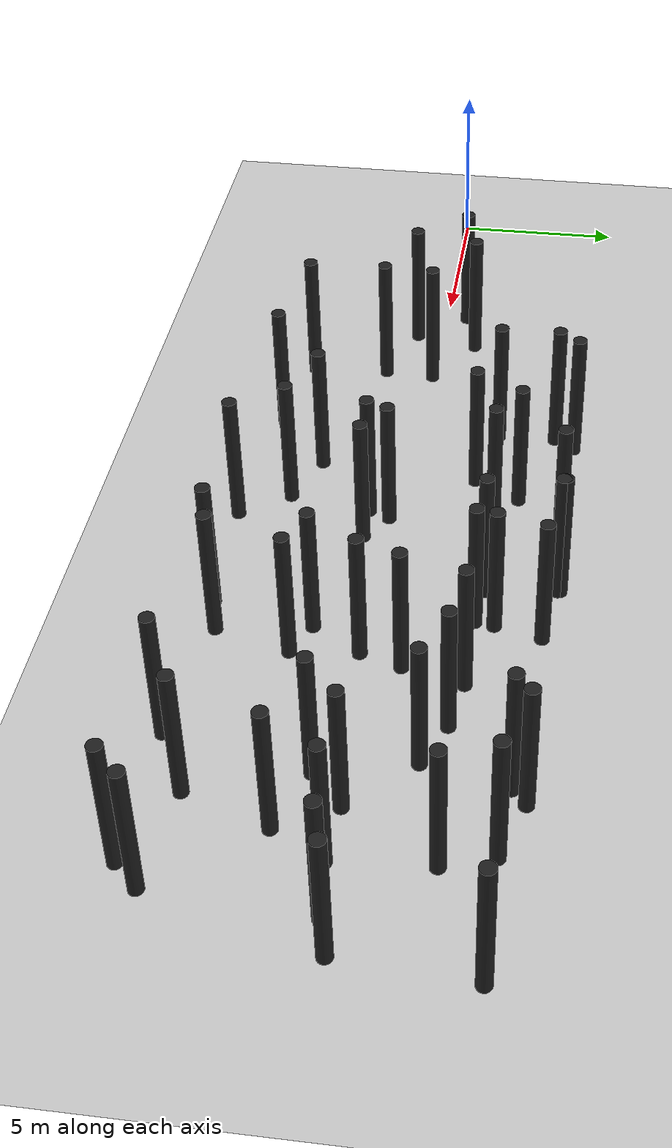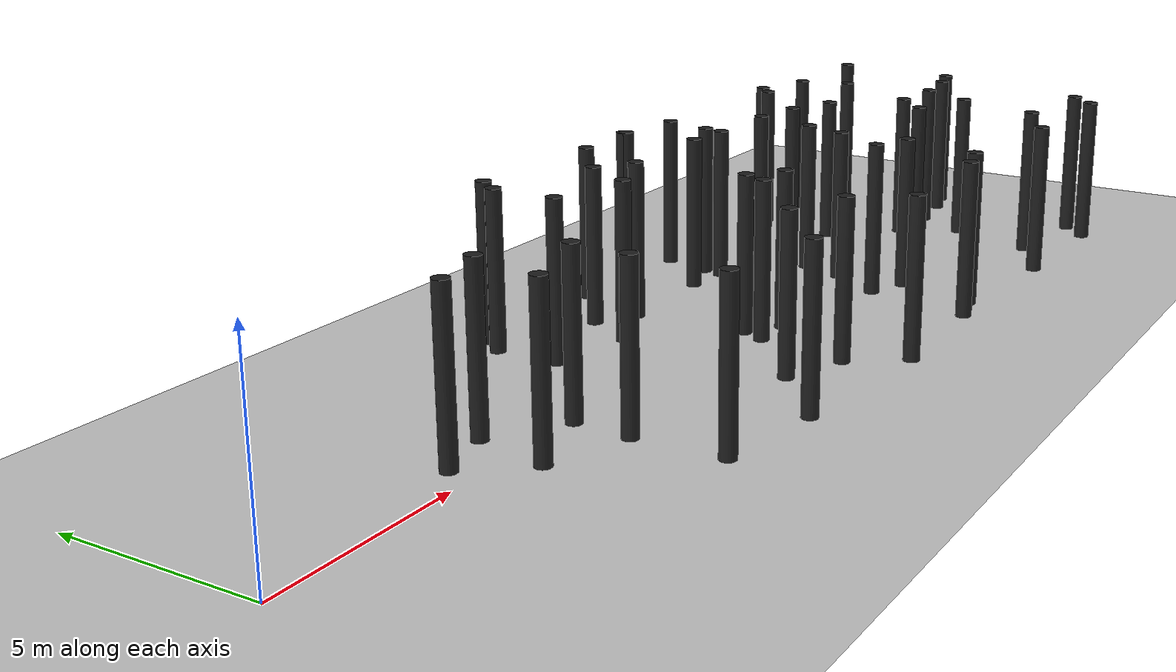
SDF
<sdf version="1.5">
 <world name="default">
  <model name="ground_plane">
   <static>1</static>
   <link name="link">
    <collision name="collision">
     <geometry><plane><normal>0 0 1</normal><size>200 200</size></plane></geometry>
     <surface><friction><ode><mu>100</mu><mu2>50</mu2></ode></friction></surface>
    </collision>
    <visual name="visual">
     <cast_shadows>0</cast_shadows>
     <geometry><plane><normal>0 0 1</normal><size>200 200</size></plane></geometry>
     <material>
      <script><uri>file://media/materials/scripts/gazebo.material</uri><name>Gazebo/Grey</name></script>
     </material>
    </visual>
   </link>
  </model>
  <model name="forest_clone_2">
   <pose>19.735 -4.62989 0.00488 0 -0 0</pose>
   <static>1</static>
   <link name="cylinder::link">
    <inertial>
     <mass>1</mass>
     <inertia><ixx>0.083</ixx><ixy>0</ixy><ixz>0</ixz><iyy>0.083</iyy><iyz>0</iyz><izz>0.083</izz></inertia>
    </inertial>
    <collision name="collision">
     <geometry><cylinder><radius>0.2</radius><length>4</length></cylinder></geometry>
    </collision>
    <visual name="visual">
     <geometry><cylinder><radius>0.2</radius><length>4</length></cylinder></geometry>
     <material>
      <script><uri>file://media/materials/scripts/gazebo.material</uri><name>Gazebo/Black</name></script>
     </material>
    </visual>
    <pose>0 0 2 0 -0 0</pose>
   </link>
  </model>
  <model name="forest_clone_3">
   <pose>23.3371 2.08051 -0.002989 0 -0 0</pose>
   <static>1</static>
   <link name="cylinder::link">
    <inertial>
     <mass>1</mass>
     <inertia><ixx>0.083</ixx><ixy>0</ixy><ixz>0</ixz><iyy>0.083</iyy><iyz>0</iyz><izz>0.083</izz></inertia>
    </inertial>
    <collision name="collision">
     <geometry><cylinder><radius>0.2</radius><length>4</length></cylinder></geometry>
    </collision>
    <visual name="visual">
     <geometry><cylinder><radius>0.2</radius><length>4</length></cylinder></geometry>
     <material>
      <script><uri>file://media/materials/scripts/gazebo.material</uri><name>Gazebo/Black</name></script>
     </material>
    </visual>
    <pose>0 0 2 0 -0 0</pose>
   </link>
  </model>
  <model name="forest_clone_5">
   <pose>16.1395 -4.73642 -0.000165 0 -0 0</pose>
   <static>1</static>
   <link name="cylinder::link">
    <inertial>
     <mass>1</mass>
     <inertia><ixx>0.083</ixx><ixy>0</ixy><ixz>0</ixz><iyy>0.083</iyy><iyz>0</iyz><izz>0.083</izz></inertia>
    </inertial>
    <collision name="collision">
     <geometry><cylinder><radius>0.2</radius><length>4</length></cylinder></geometry>
    </collision>
    <visual name="visual">
     <geometry><cylinder><radius>0.2</radius><length>4</length></cylinder></geometry>
     <material>
      <script><uri>file://media/materials/scripts/gazebo.material</uri><name>Gazebo/Black</name></script>
     </material>
    </visual>
    <pose>0 0 2 0 -0 0</pose>
   </link>
  </model>
  <model name="forest_clone_6">
   <pose>27.5638 2.34565 -0.001375 0 -0 0</pose>
   <static>1</static>
   <link name="cylinder::link">
    <inertial>
     <mass>1</mass>
     <inertia><ixx>0.083</ixx><ixy>0</ixy><ixz>0</ixz><iyy>0.083</iyy><iyz>0</iyz><izz>0.083</izz></inertia>
    </inertial>
    <collision name="collision">
     <geometry><cylinder><radius>0.2</radius><length>4</length></cylinder></geometry>
    </collision>
    <visual name="visual">
     <geometry><cylinder><radius>0.2</radius><length>4</length></cylinder></geometry>
     <material>
      <script><uri>file://media/materials/scripts/gazebo.material</uri><name>Gazebo/Black</name></script>
     </material>
    </visual>
    <pose>0 0 2 0 -0 0</pose>
   </link>
  </model>
  <model name="forest_clone_7">
   <pose>6.86446 -0.829664 0.002199 0 -0 0</pose>
   <static>1</static>
   <link name="cylinder::link">
    <inertial>
     <mass>1</mass>
     <inertia><ixx>0.083</ixx><ixy>0</ixy><ixz>0</ixz><iyy>0.083</iyy><iyz>0</iyz><izz>0.083</izz></inertia>
    </inertial>
    <collision name="collision">
     <geometry><cylinder><radius>0.2</radius><length>4</length></cylinder></geometry>
    </collision>
    <visual name="visual">
     <geometry><cylinder><radius>0.2</radius><length>4</length></cylinder></geometry>
     <material>
      <script><uri>file://media/materials/scripts/gazebo.material</uri><name>Gazebo/Black</name></script>
     </material>
    </visual>
    <pose>0 0 2 0 -0 0</pose>
   </link>
  </model>
  <model name="forest_clone_9">
   <pose>11.6936 3.89703 -4e-05 0 -0 0</pose>
   <static>1</static>
   <link name="cylinder::link">
    <inertial>
     <mass>1</mass>
     <inertia><ixx>0.083</ixx><ixy>0</ixy><ixz>0</ixz><iyy>0.083</iyy><iyz>0</iyz><izz>0.083</izz></inertia>
    </inertial>
    <collision name="collision">
     <geometry><cylinder><radius>0.2</radius><length>4</length></cylinder></geometry>
    </collision>
    <visual name="visual">
     <geometry><cylinder><radius>0.2</radius><length>4</length></cylinder></geometry>
     <material>
      <script><uri>file://media/materials/scripts/gazebo.material</uri><name>Gazebo/Black</name></script>
     </material>
    </visual>
    <pose>0 0 2 0 -0 0</pose>
   </link>
  </model>
  <model name="forest_clone_10">
   <pose>26.1507 -0.118058 -0.000189 0 -0 0</pose>
   <static>1</static>
   <link name="cylinder::link">
    <inertial>
     <mass>1</mass>
     <inertia><ixx>0.083</ixx><ixy>0</ixy><ixz>0</ixz><iyy>0.083</iyy><iyz>0</iyz><izz>0.083</izz></inertia>
    </inertial>
    <collision name="collision">
     <geometry><cylinder><radius>0.2</radius><length>4</length></cylinder></geometry>
    </collision>
    <visual name="visual">
     <geometry><cylinder><radius>0.2</radius><length>4</length></cylinder></geometry>
     <material>
      <script><uri>file://media/materials/scripts/gazebo.material</uri><name>Gazebo/Black</name></script>
     </material>
    </visual>
    <pose>0 0 2 0 -0 0</pose>
   </link>
  </model>
  <model name="forest_clone_11">
   <pose>14.5857 3.06083 -0.000358 0 -0 0</pose>
   <static>1</static>
   <link name="cylinder::link">
    <inertial>
     <mass>1</mass>
     <inertia><ixx>0.083</ixx><ixy>0</ixy><ixz>0</ixz><iyy>0.083</iyy><iyz>0</iyz><izz>0.083</izz></inertia>
    </inertial>
    <collision name="collision">
     <geometry><cylinder><radius>0.2</radius><length>4</length></cylinder></geometry>
    </collision>
    <visual name="visual">
     <geometry><cylinder><radius>0.2</radius><length>4</length></cylinder></geometry>
     <material>
      <script><uri>file://media/materials/scripts/gazebo.material</uri><name>Gazebo/Black</name></script>
     </material>
    </visual>
    <pose>0 0 2 0 -0 0</pose>
   </link>
  </model>
  <model name="forest_clone_12">
   <pose>30.221 0.206009 -0.002528 0 -0 0</pose>
   <static>1</static>
   <link name="cylinder::link">
    <inertial>
     <mass>1</mass>
     <inertia><ixx>0.083</ixx><ixy>0</ixy><ixz>0</ixz><iyy>0.083</iyy><iyz>0</iyz><izz>0.083</izz></inertia>
    </inertial>
    <collision name="collision">
     <geometry><cylinder><radius>0.2</radius><length>4</length></cylinder></geometry>
    </collision>
    <visual name="visual">
     <geometry><cylinder><radius>0.2</radius><length>4</length></cylinder></geometry>
     <material>
      <script><uri>file://media/materials/scripts/gazebo.material</uri><name>Gazebo/Black</name></script>
     </material>
    </visual>
    <pose>0 0 2 0 -0 0</pose>
   </link>
  </model>
  <model name="forest_clone_13">
   <pose>27.7577 -0.246484 0.004658 0 -0 0</pose>
   <static>1</static>
   <link name="cylinder::link">
    <inertial>
     <mass>1</mass>
     <inertia><ixx>0.083</ixx><ixy>0</ixy><ixz>0</ixz><iyy>0.083</iyy><iyz>0</iyz><izz>0.083</izz></inertia>
    </inertial>
    <collision name="collision">
     <geometry><cylinder><radius>0.2</radius><length>4</length></cylinder></geometry>
    </collision>
    <visual name="visual">
     <geometry><cylinder><radius>0.2</radius><length>4</length></cylinder></geometry>
     <material>
      <script><uri>file://media/materials/scripts/gazebo.material</uri><name>Gazebo/Black</name></script>
     </material>
    </visual>
    <pose>0 0 2 0 -0 0</pose>
   </link>
  </model>
  <model name="forest_clone_14">
   <pose>12.0933 4.47642 0.003314 0 -0 0</pose>
   <static>1</static>
   <link name="cylinder::link">
    <inertial>
     <mass>1</mass>
     <inertia><ixx>0.083</ixx><ixy>0</ixy><ixz>0</ixz><iyy>0.083</iyy><iyz>0</iyz><izz>0.083</izz></inertia>
    </inertial>
    <collision name="collision">
     <geometry><cylinder><radius>0.2</radius><length>4</length></cylinder></geometry>
    </collision>
    <visual name="visual">
     <geometry><cylinder><radius>0.2</radius><length>4</length></cylinder></geometry>
     <material>
      <script><uri>file://media/materials/scripts/gazebo.material</uri><name>Gazebo/Black</name></script>
     </material>
    </visual>
    <pose>0 0 2 0 -0 0</pose>
   </link>
  </model>
  <model name="forest_clone_15">
   <pose>16.1999 4.34021 0.004076 0 -0 0</pose>
   <static>1</static>
   <link name="cylinder::link">
    <inertial>
     <mass>1</mass>
     <inertia><ixx>0.083</ixx><ixy>0</ixy><ixz>0</ixz><iyy>0.083</iyy><iyz>0</iyz><izz>0.083</izz></inertia>
    </inertial>
    <collision name="collision">
     <geometry><cylinder><radius>0.2</radius><length>4</length></cylinder></geometry>
    </collision>
    <visual name="visual">
     <geometry><cylinder><radius>0.2</radius><length>4</length></cylinder></geometry>
     <material>
      <script><uri>file://media/materials/scripts/gazebo.material</uri><name>Gazebo/Black</name></script>
     </material>
    </visual>
    <pose>0 0 2 0 -0 0</pose>
   </link>
  </model>
  <model name="forest_clone_18">
   <pose>21.1371 -0.47592 -0.00285 0 -0 0</pose>
   <static>1</static>
   <link name="cylinder::link">
    <inertial>
     <mass>1</mass>
     <inertia><ixx>0.083</ixx><ixy>0</ixy><ixz>0</ixz><iyy>0.083</iyy><iyz>0</iyz><izz>0.083</izz></inertia>
    </inertial>
    <collision name="collision">
     <geometry><cylinder><radius>0.2</radius><length>4</length></cylinder></geometry>
    </collision>
    <visual name="visual">
     <geometry><cylinder><radius>0.2</radius><length>4</length></cylinder></geometry>
     <material>
      <script><uri>file://media/materials/scripts/gazebo.material</uri><name>Gazebo/Black</name></script>
     </material>
    </visual>
    <pose>0 0 2 0 -0 0</pose>
   </link>
  </model>
  <model name="forest_clone_20">
   <pose>26.1761 -3.96041 0.004466 0 -0 0</pose>
   <static>1</static>
   <link name="cylinder::link">
    <inertial>
     <mass>1</mass>
     <inertia><ixx>0.083</ixx><ixy>0</ixy><ixz>0</ixz><iyy>0.083</iyy><iyz>0</iyz><izz>0.083</izz></inertia>
    </inertial>
    <collision name="collision">
     <geometry><cylinder><radius>0.2</radius><length>4</length></cylinder></geometry>
    </collision>
    <visual name="visual">
     <geometry><cylinder><radius>0.2</radius><length>4</length></cylinder></geometry>
     <material>
      <script><uri>file://media/materials/scripts/gazebo.material</uri><name>Gazebo/Black</name></script>
     </material>
    </visual>
    <pose>0 0 2 0 -0 0</pose>
   </link>
  </model>
  <model name="forest_clone_23">
   <pose>21.4987 0.655511 0.000589 0 -0 0</pose>
   <static>1</static>
   <link name="cylinder::link">
    <inertial>
     <mass>1</mass>
     <inertia><ixx>0.083</ixx><ixy>0</ixy><ixz>0</ixz><iyy>0.083</iyy><iyz>0</iyz><izz>0.083</izz></inertia>
    </inertial>
    <collision name="collision">
     <geometry><cylinder><radius>0.2</radius><length>4</length></cylinder></geometry>
    </collision>
    <visual name="visual">
     <geometry><cylinder><radius>0.2</radius><length>4</length></cylinder></geometry>
     <material>
      <script><uri>file://media/materials/scripts/gazebo.material</uri><name>Gazebo/Black</name></script>
     </material>
    </visual>
    <pose>0 0 2 0 -0 0</pose>
   </link>
  </model>
  <model name="forest_clone_25">
   <pose>19.6484 2.34191 0.000782 0 -0 0</pose>
   <static>1</static>
   <link name="cylinder::link">
    <inertial>
     <mass>1</mass>
     <inertia><ixx>0.083</ixx><ixy>0</ixy><ixz>0</ixz><iyy>0.083</iyy><iyz>0</iyz><izz>0.083</izz></inertia>
    </inertial>
    <collision name="collision">
     <geometry><cylinder><radius>0.2</radius><length>4</length></cylinder></geometry>
    </collision>
    <visual name="visual">
     <geometry><cylinder><radius>0.2</radius><length>4</length></cylinder></geometry>
     <material>
      <script><uri>file://media/materials/scripts/gazebo.material</uri><name>Gazebo/Black</name></script>
     </material>
    </visual>
    <pose>0 0 2 0 -0 0</pose>
   </link>
  </model>
  <model name="forest_clone_28">
   <pose>9.03167 -3.80021 -0.00308 0 -0 0</pose>
   <static>1</static>
   <link name="cylinder::link">
    <inertial>
     <mass>1</mass>
     <inertia><ixx>0.083</ixx><ixy>0</ixy><ixz>0</ixz><iyy>0.083</iyy><iyz>0</iyz><izz>0.083</izz></inertia>
    </inertial>
    <collision name="collision">
     <geometry><cylinder><radius>0.2</radius><length>4</length></cylinder></geometry>
    </collision>
    <visual name="visual">
     <geometry><cylinder><radius>0.2</radius><length>4</length></cylinder></geometry>
     <material>
      <script><uri>file://media/materials/scripts/gazebo.material</uri><name>Gazebo/Black</name></script>
     </material>
    </visual>
    <pose>0 0 2 0 -0 0</pose>
   </link>
  </model>
  <model name="forest_clone_29">
   <pose>24.4455 -4.84335 0.004124 0 -0 0</pose>
   <static>1</static>
   <link name="cylinder::link">
    <inertial>
     <mass>1</mass>
     <inertia><ixx>0.083</ixx><ixy>0</ixy><ixz>0</ixz><iyy>0.083</iyy><iyz>0</iyz><izz>0.083</izz></inertia>
    </inertial>
    <collision name="collision">
     <geometry><cylinder><radius>0.2</radius><length>4</length></cylinder></geometry>
    </collision>
    <visual name="visual">
     <geometry><cylinder><radius>0.2</radius><length>4</length></cylinder></geometry>
     <material>
      <script><uri>file://media/materials/scripts/gazebo.material</uri><name>Gazebo/Black</name></script>
     </material>
    </visual>
    <pose>0 0 2 0 -0 0</pose>
   </link>
  </model>
  <model name="forest_clone_32">
   <pose>5.70693 0.6143 0.001264 0 -0 0</pose>
   <static>1</static>
   <link name="cylinder::link">
    <inertial>
     <mass>1</mass>
     <inertia><ixx>0.083</ixx><ixy>0</ixy><ixz>0</ixz><iyy>0.083</iyy><iyz>0</iyz><izz>0.083</izz></inertia>
    </inertial>
    <collision name="collision">
     <geometry><cylinder><radius>0.2</radius><length>4</length></cylinder></geometry>
    </collision>
    <visual name="visual">
     <geometry><cylinder><radius>0.2</radius><length>4</length></cylinder></geometry>
     <material>
      <script><uri>file://media/materials/scripts/gazebo.material</uri><name>Gazebo/Black</name></script>
     </material>
    </visual>
    <pose>0 0 2 0 -0 0</pose>
   </link>
  </model>
  <model name="forest_clone_34">
   <pose>28.3636 -4.96296 -0.001198 0 -0 0</pose>
   <static>1</static>
   <link name="cylinder::link">
    <inertial>
     <mass>1</mass>
     <inertia><ixx>0.083</ixx><ixy>0</ixy><ixz>0</ixz><iyy>0.083</iyy><iyz>0</iyz><izz>0.083</izz></inertia>
    </inertial>
    <collision name="collision">
     <geometry><cylinder><radius>0.2</radius><length>4</length></cylinder></geometry>
    </collision>
    <visual name="visual">
     <geometry><cylinder><radius>0.2</radius><length>4</length></cylinder></geometry>
     <material>
      <script><uri>file://media/materials/scripts/gazebo.material</uri><name>Gazebo/Black</name></script>
     </material>
    </visual>
    <pose>0 0 2 0 -0 0</pose>
   </link>
  </model>
  <model name="forest_clone_35">
   <pose>18.1963 4.48754 -0.000638 0 -0 0</pose>
   <static>1</static>
   <link name="cylinder::link">
    <inertial>
     <mass>1</mass>
     <inertia><ixx>0.083</ixx><ixy>0</ixy><ixz>0</ixz><iyy>0.083</iyy><iyz>0</iyz><izz>0.083</izz></inertia>
    </inertial>
    <collision name="collision">
     <geometry><cylinder><radius>0.2</radius><length>4</length></cylinder></geometry>
    </collision>
    <visual name="visual">
     <geometry><cylinder><radius>0.2</radius><length>4</length></cylinder></geometry>
     <material>
      <script><uri>file://media/materials/scripts/gazebo.material</uri><name>Gazebo/Black</name></script>
     </material>
    </visual>
    <pose>0 0 2 0 -0 0</pose>
   </link>
  </model>
  <model name="forest_clone_36">
   <pose>20.7416 -4.36568 0.001531 0 -0 0</pose>
   <static>1</static>
   <link name="cylinder::link">
    <inertial>
     <mass>1</mass>
     <inertia><ixx>0.083</ixx><ixy>0</ixy><ixz>0</ixz><iyy>0.083</iyy><iyz>0</iyz><izz>0.083</izz></inertia>
    </inertial>
    <collision name="collision">
     <geometry><cylinder><radius>0.2</radius><length>4</length></cylinder></geometry>
    </collision>
    <visual name="visual">
     <geometry><cylinder><radius>0.2</radius><length>4</length></cylinder></geometry>
     <material>
      <script><uri>file://media/materials/scripts/gazebo.material</uri><name>Gazebo/Black</name></script>
     </material>
    </visual>
    <pose>0 0 2 0 -0 0</pose>
   </link>
  </model>
  <model name="forest_clone_38">
   <pose>15.5802 -1.07966 0.000842 0 -0 0</pose>
   <static>1</static>
   <link name="cylinder::link">
    <inertial>
     <mass>1</mass>
     <inertia><ixx>0.083</ixx><ixy>0</ixy><ixz>0</ixz><iyy>0.083</iyy><iyz>0</iyz><izz>0.083</izz></inertia>
    </inertial>
    <collision name="collision">
     <geometry><cylinder><radius>0.2</radius><length>4</length></cylinder></geometry>
    </collision>
    <visual name="visual">
     <geometry><cylinder><radius>0.2</radius><length>4</length></cylinder></geometry>
     <material>
      <script><uri>file://media/materials/scripts/gazebo.material</uri><name>Gazebo/Black</name></script>
     </material>
    </visual>
    <pose>0 0 2 0 -0 0</pose>
   </link>
  </model>
  <model name="forest_clone_39">
   <pose>13.8792 1.75486 -0.003355 0 -0 0</pose>
   <static>1</static>
   <link name="cylinder::link">
    <inertial>
     <mass>1</mass>
     <inertia><ixx>0.083</ixx><ixy>0</ixy><ixz>0</ixz><iyy>0.083</iyy><iyz>0</iyz><izz>0.083</izz></inertia>
    </inertial>
    <collision name="collision">
     <geometry><cylinder><radius>0.2</radius><length>4</length></cylinder></geometry>
    </collision>
    <visual name="visual">
     <geometry><cylinder><radius>0.2</radius><length>4</length></cylinder></geometry>
     <material>
      <script><uri>file://media/materials/scripts/gazebo.material</uri><name>Gazebo/Black</name></script>
     </material>
    </visual>
    <pose>0 0 2 0 -0 0</pose>
   </link>
  </model>
  <model name="forest_clone_43">
   <pose>26.9808 -1.64941 0.001403 0 -0 0</pose>
   <static>1</static>
   <link name="cylinder::link">
    <inertial>
     <mass>1</mass>
     <inertia><ixx>0.083</ixx><ixy>0</ixy><ixz>0</ixz><iyy>0.083</iyy><iyz>0</iyz><izz>0.083</izz></inertia>
    </inertial>
    <collision name="collision">
     <geometry><cylinder><radius>0.2</radius><length>4</length></cylinder></geometry>
    </collision>
    <visual name="visual">
     <geometry><cylinder><radius>0.2</radius><length>4</length></cylinder></geometry>
     <material>
      <script><uri>file://media/materials/scripts/gazebo.material</uri><name>Gazebo/Black</name></script>
     </material>
    </visual>
    <pose>0 0 2 0 -0 0</pose>
   </link>
  </model>
  <model name="forest_clone_44">
   <pose>8.92348 -1.56119 -0.003668 0 -0 0</pose>
   <static>1</static>
   <link name="cylinder::link">
    <inertial>
     <mass>1</mass>
     <inertia><ixx>0.083</ixx><ixy>0</ixy><ixz>0</ixz><iyy>0.083</iyy><iyz>0</iyz><izz>0.083</izz></inertia>
    </inertial>
    <collision name="collision">
     <geometry><cylinder><radius>0.2</radius><length>4</length></cylinder></geometry>
    </collision>
    <visual name="visual">
     <geometry><cylinder><radius>0.2</radius><length>4</length></cylinder></geometry>
     <material>
      <script><uri>file://media/materials/scripts/gazebo.material</uri><name>Gazebo/Black</name></script>
     </material>
    </visual>
    <pose>0 0 2 0 -0 0</pose>
   </link>
  </model>
  <model name="forest_clone_46">
   <pose>18.4556 2.47987 0.001708 0 -0 0</pose>
   <static>1</static>
   <link name="cylinder::link">
    <inertial>
     <mass>1</mass>
     <inertia><ixx>0.083</ixx><ixy>0</ixy><ixz>0</ixz><iyy>0.083</iyy><iyz>0</iyz><izz>0.083</izz></inertia>
    </inertial>
    <collision name="collision">
     <geometry><cylinder><radius>0.2</radius><length>4</length></cylinder></geometry>
    </collision>
    <visual name="visual">
     <geometry><cylinder><radius>0.2</radius><length>4</length></cylinder></geometry>
     <material>
      <script><uri>file://media/materials/scripts/gazebo.material</uri><name>Gazebo/Black</name></script>
     </material>
    </visual>
    <pose>0 0 2 0 -0 0</pose>
   </link>
  </model>
  <model name="forest_clone_48">
   <pose>25.12 3.80178 -0.002242 0 -0 0</pose>
   <static>1</static>
   <link name="cylinder::link">
    <inertial>
     <mass>1</mass>
     <inertia><ixx>0.083</ixx><ixy>0</ixy><ixz>0</ixz><iyy>0.083</iyy><iyz>0</iyz><izz>0.083</izz></inertia>
    </inertial>
    <collision name="collision">
     <geometry><cylinder><radius>0.2</radius><length>4</length></cylinder></geometry>
    </collision>
    <visual name="visual">
     <geometry><cylinder><radius>0.2</radius><length>4</length></cylinder></geometry>
     <material>
      <script><uri>file://media/materials/scripts/gazebo.material</uri><name>Gazebo/Black</name></script>
     </material>
    </visual>
    <pose>0 0 2 0 -0 0</pose>
   </link>
  </model>
  <model name="forest_clone_49">
   <pose>19.724 2.86631 0.003731 0 -0 0</pose>
   <static>1</static>
   <link name="cylinder::link">
    <inertial>
     <mass>1</mass>
     <inertia><ixx>0.083</ixx><ixy>0</ixy><ixz>0</ixz><iyy>0.083</iyy><iyz>0</iyz><izz>0.083</izz></inertia>
    </inertial>
    <collision name="collision">
     <geometry><cylinder><radius>0.2</radius><length>4</length></cylinder></geometry>
    </collision>
    <visual name="visual">
     <geometry><cylinder><radius>0.2</radius><length>4</length></cylinder></geometry>
     <material>
      <script><uri>file://media/materials/scripts/gazebo.material</uri><name>Gazebo/Black</name></script>
     </material>
    </visual>
    <pose>0 0 2 0 -0 0</pose>
   </link>
  </model>
  <model name="forest_clone_51">
   <pose>27.1444 3.67133 0.003379 0 -0 0</pose>
   <static>1</static>
   <link name="cylinder::link">
    <inertial>
     <mass>1</mass>
     <inertia><ixx>0.083</ixx><ixy>0</ixy><ixz>0</ixz><iyy>0.083</iyy><iyz>0</iyz><izz>0.083</izz></inertia>
    </inertial>
    <collision name="collision">
     <geometry><cylinder><radius>0.2</radius><length>4</length></cylinder></geometry>
    </collision>
    <visual name="visual">
     <geometry><cylinder><radius>0.2</radius><length>4</length></cylinder></geometry>
     <material>
      <script><uri>file://media/materials/scripts/gazebo.material</uri><name>Gazebo/Black</name></script>
     </material>
    </visual>
    <pose>0 0 2 0 -0 0</pose>
   </link>
  </model>
  <model name="forest_clone_52">
   <pose>15.5269 2.43154 0.004404 0 -0 0</pose>
   <static>1</static>
   <link name="cylinder::link">
    <inertial>
     <mass>1</mass>
     <inertia><ixx>0.083</ixx><ixy>0</ixy><ixz>0</ixz><iyy>0.083</iyy><iyz>0</iyz><izz>0.083</izz></inertia>
    </inertial>
    <collision name="collision">
     <geometry><cylinder><radius>0.2</radius><length>4</length></cylinder></geometry>
    </collision>
    <visual name="visual">
     <geometry><cylinder><radius>0.2</radius><length>4</length></cylinder></geometry>
     <material>
      <script><uri>file://media/materials/scripts/gazebo.material</uri><name>Gazebo/Black</name></script>
     </material>
    </visual>
    <pose>0 0 2 0 -0 0</pose>
   </link>
  </model>
  <model name="forest_clone_53">
   <pose>18.2167 4.42349 0.003352 0 -0 0</pose>
   <static>1</static>
   <link name="cylinder::link">
    <inertial>
     <mass>1</mass>
     <inertia><ixx>0.083</ixx><ixy>0</ixy><ixz>0</ixz><iyy>0.083</iyy><iyz>0</iyz><izz>0.083</izz></inertia>
    </inertial>
    <collision name="collision">
     <geometry><cylinder><radius>0.2</radius><length>4</length></cylinder></geometry>
    </collision>
    <visual name="visual">
     <geometry><cylinder><radius>0.2</radius><length>4</length></cylinder></geometry>
     <material>
      <script><uri>file://media/materials/scripts/gazebo.material</uri><name>Gazebo/Black</name></script>
     </material>
    </visual>
    <pose>0 0 2 0 -0 0</pose>
   </link>
  </model>
  <model name="forest_clone_54">
   <pose>21.9007 2.3242 -0.004758 0 -0 0</pose>
   <static>1</static>
   <link name="cylinder::link">
    <inertial>
     <mass>1</mass>
     <inertia><ixx>0.083</ixx><ixy>0</ixy><ixz>0</ixz><iyy>0.083</iyy><iyz>0</iyz><izz>0.083</izz></inertia>
    </inertial>
    <collision name="collision">
     <geometry><cylinder><radius>0.2</radius><length>4</length></cylinder></geometry>
    </collision>
    <visual name="visual">
     <geometry><cylinder><radius>0.2</radius><length>4</length></cylinder></geometry>
     <material>
      <script><uri>file://media/materials/scripts/gazebo.material</uri><name>Gazebo/Black</name></script>
     </material>
    </visual>
    <pose>0 0 2 0 -0 0</pose>
   </link>
  </model>
  <model name="forest_clone_55">
   <pose>30.48 3.70209 -0.000585 0 -0 0</pose>
   <static>1</static>
   <link name="cylinder::link">
    <inertial>
     <mass>1</mass>
     <inertia><ixx>0.083</ixx><ixy>0</ixy><ixz>0</ixz><iyy>0.083</iyy><iyz>0</iyz><izz>0.083</izz></inertia>
    </inertial>
    <collision name="collision">
     <geometry><cylinder><radius>0.2</radius><length>4</length></cylinder></geometry>
    </collision>
    <visual name="visual">
     <geometry><cylinder><radius>0.2</radius><length>4</length></cylinder></geometry>
     <material>
      <script><uri>file://media/materials/scripts/gazebo.material</uri><name>Gazebo/Black</name></script>
     </material>
    </visual>
    <pose>0 0 2 0 -0 0</pose>
   </link>
  </model>
  <model name="forest_clone_56">
   <pose>29.2596 -0.061953 0.002523 0 -0 0</pose>
   <static>1</static>
   <link name="cylinder::link">
    <inertial>
     <mass>1</mass>
     <inertia><ixx>0.083</ixx><ixy>0</ixy><ixz>0</ixz><iyy>0.083</iyy><iyz>0</iyz><izz>0.083</izz></inertia>
    </inertial>
    <collision name="collision">
     <geometry><cylinder><radius>0.2</radius><length>4</length></cylinder></geometry>
    </collision>
    <visual name="visual">
     <geometry><cylinder><radius>0.2</radius><length>4</length></cylinder></geometry>
     <material>
      <script><uri>file://media/materials/scripts/gazebo.material</uri><name>Gazebo/Black</name></script>
     </material>
    </visual>
    <pose>0 0 2 0 -0 0</pose>
   </link>
  </model>
  <model name="forest_clone_57">
   <pose>11.8159 -4.24119 -0.00419 0 -0 0</pose>
   <static>1</static>
   <link name="cylinder::link">
    <inertial>
     <mass>1</mass>
     <inertia><ixx>0.083</ixx><ixy>0</ixy><ixz>0</ixz><iyy>0.083</iyy><iyz>0</iyz><izz>0.083</izz></inertia>
    </inertial>
    <collision name="collision">
     <geometry><cylinder><radius>0.2</radius><length>4</length></cylinder></geometry>
    </collision>
    <visual name="visual">
     <geometry><cylinder><radius>0.2</radius><length>4</length></cylinder></geometry>
     <material>
      <script><uri>file://media/materials/scripts/gazebo.material</uri><name>Gazebo/Black</name></script>
     </material>
    </visual>
    <pose>0 0 2 0 -0 0</pose>
   </link>
  </model>
  <model name="forest_clone_59">
   <pose>9.00278 -0.105543 -0.004005 0 -0 0</pose>
   <static>1</static>
   <link name="cylinder::link">
    <inertial>
     <mass>1</mass>
     <inertia><ixx>0.083</ixx><ixy>0</ixy><ixz>0</ixz><iyy>0.083</iyy><iyz>0</iyz><izz>0.083</izz></inertia>
    </inertial>
    <collision name="collision">
     <geometry><cylinder><radius>0.2</radius><length>4</length></cylinder></geometry>
    </collision>
    <visual name="visual">
     <geometry><cylinder><radius>0.2</radius><length>4</length></cylinder></geometry>
     <material>
      <script><uri>file://media/materials/scripts/gazebo.material</uri><name>Gazebo/Black</name></script>
     </material>
    </visual>
    <pose>0 0 2 0 -0 0</pose>
   </link>
  </model>
  <model name="forest_clone_63">
   <pose>16.6744 -1.09103 -0.000946 0 -0 0</pose>
   <static>1</static>
   <link name="cylinder::link">
    <inertial>
     <mass>1</mass>
     <inertia><ixx>0.083</ixx><ixy>0</ixy><ixz>0</ixz><iyy>0.083</iyy><iyz>0</iyz><izz>0.083</izz></inertia>
    </inertial>
    <collision name="collision">
     <geometry><cylinder><radius>0.2</radius><length>4</length></cylinder></geometry>
    </collision>
    <visual name="visual">
     <geometry><cylinder><radius>0.2</radius><length>4</length></cylinder></geometry>
     <material>
      <script><uri>file://media/materials/scripts/gazebo.material</uri><name>Gazebo/Black</name></script>
     </material>
    </visual>
    <pose>0 0 2 0 -0 0</pose>
   </link>
  </model>
  <model name="forest_clone_68">
   <pose>29.0083 -4.30308 5.1e-05 0 -0 0</pose>
   <static>1</static>
   <link name="cylinder::link">
    <inertial>
     <mass>1</mass>
     <inertia><ixx>0.083</ixx><ixy>0</ixy><ixz>0</ixz><iyy>0.083</iyy><iyz>0</iyz><izz>0.083</izz></inertia>
    </inertial>
    <collision name="collision">
     <geometry><cylinder><radius>0.2</radius><length>4</length></cylinder></geometry>
    </collision>
    <visual name="visual">
     <geometry><cylinder><radius>0.2</radius><length>4</length></cylinder></geometry>
     <material>
      <script><uri>file://media/materials/scripts/gazebo.material</uri><name>Gazebo/Black</name></script>
     </material>
    </visual>
    <pose>0 0 2 0 -0 0</pose>
   </link>
  </model>
  <model name="forest_clone_71">
   <pose>24.6107 1.53569 0.000974 0 -0 0</pose>
   <static>1</static>
   <link name="cylinder::link">
    <inertial>
     <mass>1</mass>
     <inertia><ixx>0.083</ixx><ixy>0</ixy><ixz>0</ixz><iyy>0.083</iyy><iyz>0</iyz><izz>0.083</izz></inertia>
    </inertial>
    <collision name="collision">
     <geometry><cylinder><radius>0.2</radius><length>4</length></cylinder></geometry>
    </collision>
    <visual name="visual">
     <geometry><cylinder><radius>0.2</radius><length>4</length></cylinder></geometry>
     <material>
      <script><uri>file://media/materials/scripts/gazebo.material</uri><name>Gazebo/Black</name></script>
     </material>
    </visual>
    <pose>0 0 2 0 -0 0</pose>
   </link>
  </model>
  <model name="forest_clone_72">
   <pose>15.2101 -3.39108 -0.003527 0 -0 0</pose>
   <static>1</static>
   <link name="cylinder::link">
    <inertial>
     <mass>1</mass>
     <inertia><ixx>0.083</ixx><ixy>0</ixy><ixz>0</ixz><iyy>0.083</iyy><iyz>0</iyz><izz>0.083</izz></inertia>
    </inertial>
    <collision name="collision">
     <geometry><cylinder><radius>0.2</radius><length>4</length></cylinder></geometry>
    </collision>
    <visual name="visual">
     <geometry><cylinder><radius>0.2</radius><length>4</length></cylinder></geometry>
     <material>
      <script><uri>file://media/materials/scripts/gazebo.material</uri><name>Gazebo/Black</name></script>
     </material>
    </visual>
    <pose>0 0 2 0 -0 0</pose>
   </link>
  </model>
  <model name="forest_clone_76">
   <pose>15.8236 -0.483268 0.004695 0 -0 0</pose>
   <static>1</static>
   <link name="cylinder::link">
    <inertial>
     <mass>1</mass>
     <inertia><ixx>0.083</ixx><ixy>0</ixy><ixz>0</ixz><iyy>0.083</iyy><iyz>0</iyz><izz>0.083</izz></inertia>
    </inertial>
    <collision name="collision">
     <geometry><cylinder><radius>0.2</radius><length>4</length></cylinder></geometry>
    </collision>
    <visual name="visual">
     <geometry><cylinder><radius>0.2</radius><length>4</length></cylinder></geometry>
     <material>
      <script><uri>file://media/materials/scripts/gazebo.material</uri><name>Gazebo/Black</name></script>
     </material>
    </visual>
    <pose>0 0 2 0 -0 0</pose>
   </link>
  </model>
  <model name="forest_clone_77">
   <pose>7.24082 1.02738 0.002951 0 -0 0</pose>
   <static>1</static>
   <link name="cylinder::link">
    <inertial>
     <mass>1</mass>
     <inertia><ixx>0.083</ixx><ixy>0</ixy><ixz>0</ixz><iyy>0.083</iyy><iyz>0</iyz><izz>0.083</izz></inertia>
    </inertial>
    <collision name="collision">
     <geometry><cylinder><radius>0.2</radius><length>4</length></cylinder></geometry>
    </collision>
    <visual name="visual">
     <geometry><cylinder><radius>0.2</radius><length>4</length></cylinder></geometry>
     <material>
      <script><uri>file://media/materials/scripts/gazebo.material</uri><name>Gazebo/Black</name></script>
     </material>
    </visual>
    <pose>0 0 2 0 -0 0</pose>
   </link>
  </model>
  <model name="forest_clone_79">
   <pose>21.3211 -2.28981 6.5e-05 0 -0 0</pose>
   <static>1</static>
   <link name="cylinder::link">
    <inertial>
     <mass>1</mass>
     <inertia><ixx>0.083</ixx><ixy>0</ixy><ixz>0</ixz><iyy>0.083</iyy><iyz>0</iyz><izz>0.083</izz></inertia>
    </inertial>
    <collision name="collision">
     <geometry><cylinder><radius>0.2</radius><length>4</length></cylinder></geometry>
    </collision>
    <visual name="visual">
     <geometry><cylinder><radius>0.2</radius><length>4</length></cylinder></geometry>
     <material>
      <script><uri>file://media/materials/scripts/gazebo.material</uri><name>Gazebo/Black</name></script>
     </material>
    </visual>
    <pose>0 0 2 0 -0 0</pose>
   </link>
  </model>
  <model name="forest_clone_84">
   <pose>13.6168 -2.75672 -0.000208 0 -0 0</pose>
   <static>1</static>
   <link name="cylinder::link">
    <inertial>
     <mass>1</mass>
     <inertia><ixx>0.083</ixx><ixy>0</ixy><ixz>0</ixz><iyy>0.083</iyy><iyz>0</iyz><izz>0.083</izz></inertia>
    </inertial>
    <collision name="collision">
     <geometry><cylinder><radius>0.2</radius><length>4</length></cylinder></geometry>
    </collision>
    <visual name="visual">
     <geometry><cylinder><radius>0.2</radius><length>4</length></cylinder></geometry>
     <material>
      <script><uri>file://media/materials/scripts/gazebo.material</uri><name>Gazebo/Black</name></script>
     </material>
    </visual>
    <pose>0 0 2 0 -0 0</pose>
   </link>
  </model>
  <model name="forest_clone_89">
   <pose>25.2247 -0.981196 0.003075 0 -0 0</pose>
   <static>1</static>
   <link name="cylinder::link">
    <inertial>
     <mass>1</mass>
     <inertia><ixx>0.083</ixx><ixy>0</ixy><ixz>0</ixz><iyy>0.083</iyy><iyz>0</iyz><izz>0.083</izz></inertia>
    </inertial>
    <collision name="collision">
     <geometry><cylinder><radius>0.2</radius><length>4</length></cylinder></geometry>
    </collision>
    <visual name="visual">
     <geometry><cylinder><radius>0.2</radius><length>4</length></cylinder></geometry>
     <material>
      <script><uri>file://media/materials/scripts/gazebo.material</uri><name>Gazebo/Black</name></script>
     </material>
    </visual>
    <pose>0 0 2 0 -0 0</pose>
   </link>
  </model>
  <model name="forest_clone_91">
   <pose>11.7529 2.23478 -0.002557 0 -0 0</pose>
   <static>1</static>
   <link name="cylinder::link">
    <inertial>
     <mass>1</mass>
     <inertia><ixx>0.083</ixx><ixy>0</ixy><ixz>0</ixz><iyy>0.083</iyy><iyz>0</iyz><izz>0.083</izz></inertia>
    </inertial>
    <collision name="collision">
     <geometry><cylinder><radius>0.2</radius><length>4</length></cylinder></geometry>
    </collision>
    <visual name="visual">
     <geometry><cylinder><radius>0.2</radius><length>4</length></cylinder></geometry>
     <material>
      <script><uri>file://media/materials/scripts/gazebo.material</uri><name>Gazebo/Black</name></script>
     </material>
    </visual>
    <pose>0 0 2 0 -0 0</pose>
   </link>
  </model>
  <model name="forest_clone_93">
   <pose>25.5449 4.19784 0.002981 0 -0 0</pose>
   <static>1</static>
   <link name="cylinder::link">
    <inertial>
     <mass>1</mass>
     <inertia><ixx>0.083</ixx><ixy>0</ixy><ixz>0</ixz><iyy>0.083</iyy><iyz>0</iyz><izz>0.083</izz></inertia>
    </inertial>
    <collision name="collision">
     <geometry><cylinder><radius>0.2</radius><length>4</length></cylinder></geometry>
    </collision>
    <visual name="visual">
     <geometry><cylinder><radius>0.2</radius><length>4</length></cylinder></geometry>
     <material>
      <script><uri>file://media/materials/scripts/gazebo.material</uri><name>Gazebo/Black</name></script>
     </material>
    </visual>
    <pose>0 0 2 0 -0 0</pose>
   </link>
  </model>
  <model name="forest_clone_97">
   <pose>20.036 4.14583 0.003654 0 -0 0</pose>
   <static>1</static>
   <link name="cylinder::link">
    <inertial>
     <mass>1</mass>
     <inertia><ixx>0.083</ixx><ixy>0</ixy><ixz>0</ixz><iyy>0.083</iyy><iyz>0</iyz><izz>0.083</izz></inertia>
    </inertial>
    <collision name="collision">
     <geometry><cylinder><radius>0.2</radius><length>4</length></cylinder></geometry>
    </collision>
    <visual name="visual">
     <geometry><cylinder><radius>0.2</radius><length>4</length></cylinder></geometry>
     <material>
      <script><uri>file://media/materials/scripts/gazebo.material</uri><name>Gazebo/Black</name></script>
     </material>
    </visual>
    <pose>0 0 2 0 -0 0</pose>
   </link>
  </model>
  <model name="forest_clone_99">
   <pose>20.3332 -1.84013 -0.001249 0 -0 0</pose>
   <static>1</static>
   <link name="cylinder::link">
    <inertial>
     <mass>1</mass>
     <inertia><ixx>0.083</ixx><ixy>0</ixy><ixz>0</ixz><iyy>0.083</iyy><iyz>0</iyz><izz>0.083</izz></inertia>
    </inertial>
    <collision name="collision">
     <geometry><cylinder><radius>0.2</radius><length>4</length></cylinder></geometry>
    </collision>
    <visual name="visual">
     <geometry><cylinder><radius>0.2</radius><length>4</length></cylinder></geometry>
     <material>
      <script><uri>file://media/materials/scripts/gazebo.material</uri><name>Gazebo/Black</name></script>
     </material>
    </visual>
    <pose>0 0 2 0 -0 0</pose>
   </link>
  </model>
 </world>
</sdf>
